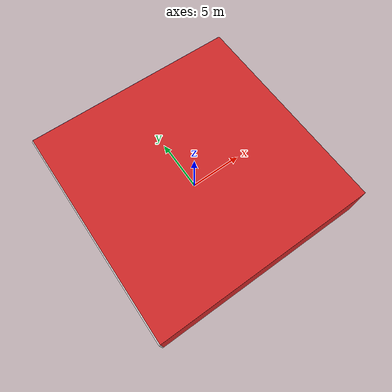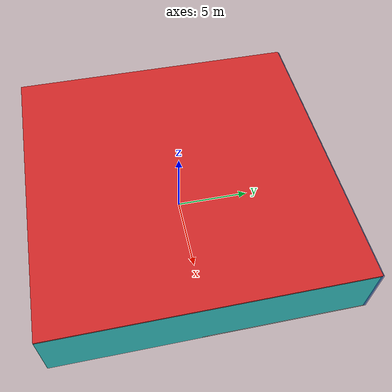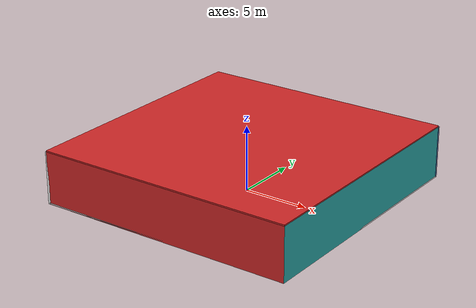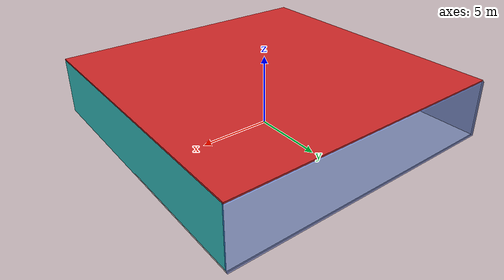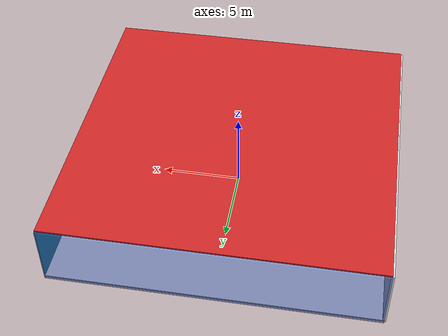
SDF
<sdf version="1.4">
 <world name="default">
  <physics type="ode">
   <max_step_size>0.001</max_step_size>
   <real_time_factor>1</real_time_factor>
   <real_time_update_rate>1000</real_time_update_rate>
   <gravity>0 0 -9.8</gravity>
  </physics>
  <scene><ambient>0.4 0.4 0.4 1</ambient><background>0.7 0.7 0.7 1</background><shadows>1</shadows></scene>
  <model name="Surrounding">
   <static>1</static>
   <link name="Ceiling">
    <collision name="Ceiling_Collision"><geometry><box><size>20 20 0.1</size></box></geometry></collision>
    <visual name="Ceiling_Visual">
     <geometry><box><size>20 20 0.1</size></box></geometry>
     <material>
      <script><uri>file://media/materials/scripts/gazebo.material</uri><name>Gazebo/Red</name></script>
     </material>
    </visual>
    <pose>0 0 4.05 0 0 0</pose>
   </link>
   <link name="Wall_South">
    <collision name="Wall_South_Collision">
     <geometry><box><size>20 0 4</size></box></geometry>
     <pose>0 0 2 0 -0 0</pose>
    </collision>
    <visual name="Wall_South_Visual">
     <pose>0 0 2 0 -0 0</pose>
     <geometry><box><size>20 0 4</size></box></geometry>
     <material>
      <script><uri>file://media/materials/scripts/gazebo.material</uri><name>Gazebo/RedGlow</name></script>
     </material>
    </visual>
    <velocity_decay><linear>0</linear><angular>0</angular></velocity_decay>
    <pose>0 -10 0 0 -0 0</pose>
   </link>
   <link name="Wall_East">
    <collision name="Wall_21_Collision">
     <geometry><box><size>20 0 4</size></box></geometry>
     <pose>0 0 2 0 -0 0</pose>
    </collision>
    <visual name="Wall_21_Visual">
     <pose>0 0 2 0 -0 0</pose>
     <geometry><box><size>20 0 4</size></box></geometry>
     <material>
      <script><uri>file://media/materials/scripts/gazebo.material</uri><name>Gazebo/TurquoiseGlow</name></script>
     </material>
    </visual>
    <velocity_decay><linear>0</linear><angular>0</angular></velocity_decay>
    <pose>10 0 0 0 -0 1.5708</pose>
   </link>
   <link name="Wall_North">
    <collision name="Wall_22_Collision">
     <geometry><box><size>20 0.2 4</size></box></geometry>
     <pose>0 0 2 0 -0 0</pose>
    </collision>
    <visual name="Wall_22_Visual">
     <pose>0 0 2 0 -0 0</pose>
     <geometry><box><size>20 0.2 4</size></box></geometry>
     <material>
      <script><uri>file://media/materials/scripts/gazebo.material</uri><name>Gazebo/BlueTransparent</name></script>
     </material>
    </visual>
    <velocity_decay><linear>0</linear><angular>0</angular></velocity_decay>
    <pose>0 10 0 0 -0 0</pose>
   </link>
   <link name="Wall_West">
    <collision name="Wall_23_Collision">
     <geometry><box><size>20 0.2 4</size></box></geometry>
     <pose>0 0 2 0 -0 0</pose>
    </collision>
    <visual name="Wall_23_Visual">
     <pose>0 0 2 0 -0 0</pose>
     <geometry><box><size>20 0.2 4</size></box></geometry>
     <material>
      <script><uri>file://media/materials/scripts/gazebo.material</uri><name>Gazebo/White</name></script>
     </material>
    </visual>
    <velocity_decay><linear>0</linear><angular>0</angular></velocity_decay>
    <pose>-10 0 0 0 0 -1.5708</pose>
   </link>
   <link name="Ground_link">
    <collision name="collision">
     <pose>0 0 .05 0 -0 0</pose>
     <geometry><box><size>20 20 0.1</size></box></geometry>
    </collision>
    <visual name="visual">
     <pose>0 0 .05 0 -0 0</pose>
     <geometry><box><size>20 20 0.1</size></box></geometry>
     <material>
      <script><uri>file://media/materials/scripts/gazebo.material</uri><name>Gazebo/WhiteGlow</name></script>
     </material>
    </visual>
   </link>
   <static>1</static>
  </model>
  <spherical_coordinates>
   <surface_model>EARTH_WGS84</surface_model>
   <latitude_deg>0</latitude_deg>
   <longitude_deg>0</longitude_deg>
   <elevation>0</elevation>
   <heading_deg>0</heading_deg>
  </spherical_coordinates>
  <light name="lightball_0" type="diffuse">
   <diffuse>0.8 0.8 0.8 1</diffuse>
   <specular>0.2 0.2 0.2 1</specular>
   <attenuation>
    <range>100</range>
    <constant>0.7</constant>
    <linear>0.01</linear>
    <quadratic>0.001</quadratic>
   </attenuation>
   <direction>-0.5 0.1 -0.9</direction>
   <pose>9.74167276646 0.518512394803 3.36133708372 0 0 0</pose>
  </light>
  <light name="lightball_1" type="diffuse">
   <diffuse>0.8 0.8 0.8 1</diffuse>
   <specular>0.2 0.2 0.2 1</specular>
   <attenuation>
    <range>100</range>
    <constant>0.7</constant>
    <linear>0.01</linear>
    <quadratic>0.001</quadratic>
   </attenuation>
   <direction>-0.5 0.1 -0.9</direction>
   <pose>2.27359298488 6.14004277179 2.41457224701 0 0 0</pose>
  </light>
  <light name="lightball_2" type="diffuse">
   <diffuse>0.8 0.8 0.8 1</diffuse>
   <specular>0.2 0.2 0.2 1</specular>
   <attenuation>
    <range>100</range>
    <constant>0.7</constant>
    <linear>0.01</linear>
    <quadratic>0.001</quadratic>
   </attenuation>
   <direction>-0.5 0.1 -0.9</direction>
   <pose>-5.50212277661 6.68425279367 1.31057485676 0 0 0</pose>
  </light>
  <light name="lightball_3" type="diffuse">
   <diffuse>0.8 0.8 0.8 1</diffuse>
   <specular>0.2 0.2 0.2 1</specular>
   <attenuation>
    <range>100</range>
    <constant>0.7</constant>
    <linear>0.01</linear>
    <quadratic>0.001</quadratic>
   </attenuation>
   <direction>-0.5 0.1 -0.9</direction>
   <pose>-6.68370723922 5.01269228283 0.625079792884 0 0 0</pose>
  </light>
  <light name="lightball_4" type="diffuse">
   <diffuse>0.8 0.8 0.8 1</diffuse>
   <specular>0.2 0.2 0.2 1</specular>
   <attenuation>
    <range>100</range>
    <constant>0.7</constant>
    <linear>0.01</linear>
    <quadratic>0.001</quadratic>
   </attenuation>
   <direction>-0.5 0.1 -0.9</direction>
   <pose>-4.16542784853 -8.66316230749 1.73762248121 0 0 0</pose>
  </light>
  <light name="lightball_5" type="diffuse">
   <diffuse>0.8 0.8 0.8 1</diffuse>
   <specular>0.2 0.2 0.2 1</specular>
   <attenuation>
    <range>100</range>
    <constant>0.7</constant>
    <linear>0.01</linear>
    <quadratic>0.001</quadratic>
   </attenuation>
   <direction>-0.5 0.1 -0.9</direction>
   <pose>-6.54907405465 2.6274309937 3.76959682458 0 0 0</pose>
  </light>
  <light name="lightball_6" type="diffuse">
   <diffuse>0.8 0.8 0.8 1</diffuse>
   <specular>0.2 0.2 0.2 1</specular>
   <attenuation>
    <range>100</range>
    <constant>0.7</constant>
    <linear>0.01</linear>
    <quadratic>0.001</quadratic>
   </attenuation>
   <direction>-0.5 0.1 -0.9</direction>
   <pose>-0.217727421062 -9.97287727778 1.84912437539 0 0 0</pose>
  </light>
  <light name="lightball_7" type="diffuse">
   <diffuse>0.8 0.8 0.8 1</diffuse>
   <specular>0.2 0.2 0.2 1</specular>
   <attenuation>
    <range>100</range>
    <constant>0.7</constant>
    <linear>0.01</linear>
    <quadratic>0.001</quadratic>
   </attenuation>
   <direction>-0.5 0.1 -0.9</direction>
   <pose>1.81052281227 -7.74589982084 1.31828715507 0 0 0</pose>
  </light>
  <light name="lightball_8" type="diffuse">
   <diffuse>0.8 0.8 0.8 1</diffuse>
   <specular>0.2 0.2 0.2 1</specular>
   <attenuation>
    <range>100</range>
    <constant>0.7</constant>
    <linear>0.01</linear>
    <quadratic>0.001</quadratic>
   </attenuation>
   <direction>-0.5 0.1 -0.9</direction>
   <pose>-2.97546214305 -3.93956398251 3.61998874023 0 0 0</pose>
  </light>
  <light name="lightball_9" type="diffuse">
   <diffuse>0.8 0.8 0.8 1</diffuse>
   <specular>0.2 0.2 0.2 1</specular>
   <attenuation>
    <range>100</range>
    <constant>0.7</constant>
    <linear>0.01</linear>
    <quadratic>0.001</quadratic>
   </attenuation>
   <direction>-0.5 0.1 -0.9</direction>
   <pose>-1.25577827281 -9.76806600287 0.684757911534 0 0 0</pose>
  </light>
  <light name="lightball_10" type="diffuse">
   <diffuse>0.8 0.8 0.8 1</diffuse>
   <specular>0.2 0.2 0.2 1</specular>
   <attenuation>
    <range>100</range>
    <constant>0.7</constant>
    <linear>0.01</linear>
    <quadratic>0.001</quadratic>
   </attenuation>
   <direction>-0.5 0.1 -0.9</direction>
   <pose>-0.741872693913 1.29745194556 2.93912356797 0 0 0</pose>
  </light>
  <light name="lightball_11" type="diffuse">
   <diffuse>0.8 0.8 0.8 1</diffuse>
   <specular>0.2 0.2 0.2 1</specular>
   <attenuation>
    <range>100</range>
    <constant>0.7</constant>
    <linear>0.01</linear>
    <quadratic>0.001</quadratic>
   </attenuation>
   <direction>-0.5 0.1 -0.9</direction>
   <pose>5.91762324261 2.2161304658 3.27002308764 0 0 0</pose>
  </light>
  <light name="lightball_12" type="diffuse">
   <diffuse>0.8 0.8 0.8 1</diffuse>
   <specular>0.2 0.2 0.2 1</specular>
   <attenuation>
    <range>100</range>
    <constant>0.7</constant>
    <linear>0.01</linear>
    <quadratic>0.001</quadratic>
   </attenuation>
   <direction>-0.5 0.1 -0.9</direction>
   <pose>-4.9115998655 2.47757613447 0.864518787775 0 0 0</pose>
  </light>
  <light name="lightball_13" type="diffuse">
   <diffuse>0.8 0.8 0.8 1</diffuse>
   <specular>0.2 0.2 0.2 1</specular>
   <attenuation>
    <range>100</range>
    <constant>0.7</constant>
    <linear>0.01</linear>
    <quadratic>0.001</quadratic>
   </attenuation>
   <direction>-0.5 0.1 -0.9</direction>
   <pose>9.38208481296 9.94088407238 0.719305785899 0 0 0</pose>
  </light>
  <include><uri>model://table</uri><pose>-7.46726803811 -4.38800534433 0 0 0 0.322147304058</pose></include>
  <include><uri>model://table</uri><pose>4.90462493148 -5.18835677267 0 0 0 1.23292163697</pose></include>
  <include>
   <uri>model://robocup_3Dsim_goal</uri>
   <pose>4.95949269734 1.19787838652 0 0 0 3.00193878547</pose>
  </include>
  <include><uri>model://cabinet</uri><pose>4.70175201314 3.9208466717 0 0 0 0.717817565099</pose></include>
 </world>
</sdf>

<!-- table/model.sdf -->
<sdf version="1.5">
  <model name="table">
    <static>true</static>
    <link name="link">
      <collision name="surface">
        <pose>0 0 1.0 0 0 0</pose>
        <geometry>
          <box>
            <size>1.5 0.8 0.03</size>
          </box>
        </geometry>
        <surface>
          <friction>
            <ode>
              <mu>0.6</mu>
              <mu2>0.6</mu2>
            </ode>
          </friction>
        </surface>
      </collision>
      <visual name="visual1">
        <pose>0 0 1.0 0 0 0</pose>
        <geometry>
          <box>
            <size>1.5 0.8 0.03</size>
          </box>
        </geometry>
        <material>
          <script>
            <uri>model://media/materials/scripts/gazebo.material</uri>
            <name>Gazebo/Wood</name>
          </script>
        </material>
      </visual>
      <collision name="front_left_leg">
        <pose>0.68 0.38 0.5 0 0 0</pose>
        <geometry>
          <cylinder>
            <radius>0.02</radius>
            <length>1.0</length>
          </cylinder>
        </geometry>
      </collision>
      <visual name="front_left_leg">
        <pose>0.68 0.38 0.5 0 0 0</pose>
        <geometry>
          <cylinder>
            <radius>0.02</radius>
            <length>1.0</length>
          </cylinder>
        </geometry>
        <material>
          <script>
            <uri>model://media/materials/scripts/gazebo.material</uri>
            <name>Gazebo/Grey</name>
          </script>
        </material>
      </visual>
      <collision name="front_right_leg">
        <pose>0.68 -0.38 0.5 0 0 0</pose>
        <geometry>
          <cylinder>
            <radius>0.02</radius>
            <length>1.0</length>
          </cylinder>
        </geometry>
      </collision>
      <visual name="front_right_leg">
        <pose>0.68 -0.38 0.5 0 0 0</pose>
        <geometry>
          <cylinder>
            <radius>0.02</radius>
            <length>1.0</length>
          </cylinder>
        </geometry>
        <material>
          <script>
            <uri>model://media/materials/scripts/gazebo.material</uri>
            <name>Gazebo/Grey</name>
          </script>
        </material>
      </visual>
      <collision name="back_right_leg">
        <pose>-0.68 -0.38 0.5 0 0 0</pose>
        <geometry>
          <cylinder>
            <radius>0.02</radius>
            <length>1.0</length>
          </cylinder>
        </geometry>
      </collision>
      <visual name="back_right_leg">
        <pose>-0.68 -0.38 0.5 0 0 0</pose>
        <geometry>
          <cylinder>
            <radius>0.02</radius>
            <length>1.0</length>
          </cylinder>
        </geometry>
        <material>
          <script>
            <uri>model://media/materials/scripts/gazebo.material</uri>
            <name>Gazebo/Grey</name>
          </script>
        </material>
      </visual>
      <collision name="back_left_leg">
        <pose>-0.68 0.38 0.5 0 0 0</pose>
        <geometry>
          <cylinder>
            <radius>0.02</radius>
            <length>1.0</length>
          </cylinder>
        </geometry>
      </collision>
      <visual name="back_left_leg">
        <pose>-0.68 0.38 0.5 0 0 0</pose>
        <geometry>
          <cylinder>
            <radius>0.02</radius>
            <length>1.0</length>
          </cylinder>
        </geometry>
        <material>
          <script>
            <uri>model://media/materials/scripts/gazebo.material</uri>
            <name>Gazebo/Grey</name>
          </script>
        </material>
      </visual>
    </link>
  </model>
</sdf>

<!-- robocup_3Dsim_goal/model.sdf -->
<sdf version="1.5">
  <model name="robocup_3d_goal">
    <static>true</static>
    <link name="left_post">
      <pose>0 1.05 0.45 0 0 0</pose>
      <collision name="collision">
        <geometry>
          <cylinder>
            <radius>0.05</radius>
            <length>0.9</length>
          </cylinder>
        </geometry>
      </collision>
      <visual name="visual">
        <geometry>
          <cylinder>
            <radius>0.05</radius>
            <length>0.9</length>
          </cylinder>
        </geometry>
        <material>
          <script>
            <uri>file://media/materials/scripts/gazebo.material</uri>
            <name>Gazebo/ZincYellow</name>
          </script>
        </material>
      </visual>
    </link>
    <link name="left_support_horiz_lower">
      <pose>0.30 1.05 0.01 0 0 0</pose>
      <collision name="collision">
        <geometry>
          <box>
            <size>0.50 0.02 0.02</size>
          </box>
        </geometry>
      </collision>
      <visual name="visual">
        <geometry>
          <box>
            <size>0.50 0.02 0.02</size>
          </box>
        </geometry>
        <material>
          <script>
            <uri>file://media/materials/scripts/gazebo.material</uri>
            <name>Gazebo/White</name>
          </script>
        </material>
      </visual>
    </link>
    <link name="left_support_horiz_upper">
      <pose>0.30 1.05 0.79 0 0 0</pose>
      <collision name="collision">
        <geometry>
          <box>
            <size>0.50 0.02 0.02</size>
          </box>
        </geometry>
      </collision>
      <visual name="visual">
        <geometry>
          <box>
            <size>0.50 0.02 0.02</size>
          </box>
        </geometry>
        <material>
          <script>
            <uri>file://media/materials/scripts/gazebo.material</uri>
            <name>Gazebo/White</name>
          </script>
        </material>
      </visual>
    </link>
    <link name="left_support_vertical">
      <pose>0.56 1.05 0.4 0 1.5708 0</pose>
      <collision name="collision">
        <geometry>
          <box>
            <size>0.80 0.02 0.02</size>
          </box>
        </geometry>
      </collision>
      <visual name="visual">
        <geometry>
          <box>
            <size>0.80 0.02 0.02</size>
          </box>
        </geometry>
        <material>
          <script>
            <uri>file://media/materials/scripts/gazebo.material</uri>
            <name>Gazebo/White</name>
          </script>
        </material>
      </visual>
    </link>
    <link name="right_support_horiz_lower">
      <pose>0.30 -1.05 0.01 0 0 0</pose>
      <collision name="collision">
        <geometry>
          <box>
            <size>0.50 0.02 0.02</size>
          </box>
        </geometry>
      </collision>
      <visual name="visual">
        <geometry>
          <box>
            <size>0.50 0.02 0.02</size>
          </box>
        </geometry>
        <material>
          <script>
            <uri>file://media/materials/scripts/gazebo.material</uri>
            <name>Gazebo/White</name>
          </script>
        </material>
      </visual>
    </link>
    <link name="right_support_horiz_upper">
      <pose>0.30 -1.05 0.79 0 0 0</pose>
      <collision name="collision">
        <geometry>
          <box>
            <size>0.50 0.02 0.02</size>
          </box>
        </geometry>
      </collision>
      <visual name="visual">
        <geometry>
          <box>
            <size>0.50 0.02 0.02</size>
          </box>
        </geometry>
        <material>
          <script>
            <uri>file://media/materials/scripts/gazebo.material</uri>
            <name>Gazebo/White</name>
          </script>
        </material>
      </visual>
    </link>
    <link name="right_support_vertical">
      <pose>0.56 -1.05 0.4 0 1.5708 0</pose>
      <collision name="collision">
        <geometry>
          <box>
            <size>0.80 0.02 0.02</size>
          </box>
        </geometry>
      </collision>
      <visual name="visual">
        <geometry>
          <box>
            <size>0.80 0.02 0.02</size>
          </box>
        </geometry>
        <material>
          <script>
            <uri>file://media/materials/scripts/gazebo.material</uri>
            <name>Gazebo/White</name>
          </script>
        </material>
      </visual>
    </link>
    <link name="center_support_horiz_lower">
      <pose>0.56 0 0.01 0 1.5708 0</pose>
      <collision name="collision">
        <geometry>
          <box>
            <size>0.02 2.08 0.02</size>
          </box>
        </geometry>
      </collision>
      <visual name="visual">
        <geometry>
          <box>
            <size>0.02 2.08 0.02</size>
          </box>
        </geometry>
        <material>
          <script>
            <uri>file://media/materials/scripts/gazebo.material</uri>
            <name>Gazebo/White</name>
          </script>
        </material>
      </visual>
    </link>
    <link name="center_support_horiz_upper">
      <pose>0.56 0 0.79 0 1.5708 0</pose>
      <collision name="collision">
        <geometry>
          <box>
            <size>0.02 2.08 0.02</size>
          </box>
        </geometry>
      </collision>
      <visual name="visual">
        <geometry>
          <box>
            <size>0.02 2.08 0.02</size>
          </box>
        </geometry>
        <material>
          <script>
            <uri>file://media/materials/scripts/gazebo.material</uri>
            <name>Gazebo/White</name>
          </script>
        </material>
      </visual>
    </link>
    <link name="right_post">
      <pose>0 -1.05 0.45 0 0 0</pose>
      <collision name="collision">
        <geometry>
          <cylinder>
            <radius>0.05</radius>
            <length>0.9</length>
          </cylinder>
        </geometry>
      </collision>
      <visual name="visual">
        <geometry>
          <cylinder>
            <radius>0.05</radius>
            <length>0.9</length>
          </cylinder>
        </geometry>
        <material>
          <script>
            <uri>file://media/materials/scripts/gazebo.material</uri>
            <name>Gazebo/ZincYellow</name>
          </script>
        </material>
      </visual>
    </link>
    <link name="crossbar">
      <pose>0 0 0.85 1.57 1.57 0</pose>
      <collision name="collision">
        <geometry>
          <cylinder>
            <radius>0.05</radius>
            <length>2.0</length>
          </cylinder>
        </geometry>
      </collision>
      <visual name="visual">
        <geometry>
          <cylinder>
            <radius>0.05</radius>
            <length>2.0</length>
          </cylinder>
        </geometry>
        <material>
          <script>
            <uri>file://media/materials/scripts/gazebo.material</uri>
            <name>Gazebo/ZincYellow</name>
          </script>
        </material>
      </visual>
    </link>
    <link name="center_net">
      <pose>0.56 0 0.40 0 0 0</pose>
      <collision name="collision">
        <geometry>
          <box>
            <size>0.01 2.1 0.80</size>
          </box>
        </geometry>
      </collision>
      <visual name="visual">
        <geometry>
          <box>
            <size>0.01 2.1 0.80</size>
          </box>
        </geometry>
        <material>
          <script>
            <uri>model://../model_source/models/robocup09_spl_field/materials/scripts/</uri>
            <uri>model://../model_source/models/robocup09_spl_field/materials/textures/</uri>
            <name>RoboCup/Net</name>
          </script>
        </material>
      </visual>
    </link>
    <link name="left_net">
      <pose>0.30 1.05 0.40 0 0 0</pose>
      <collision name="collision">
        <geometry>
          <box>
            <size>0.50 0.01 0.76</size>
          </box>
        </geometry>
      </collision>
      <visual name="visual">
        <geometry>
          <box>
            <size>0.50 0.01 0.76</size>
          </box>
        </geometry>
        <material>
          <script>
            <uri>model://../model_source/models/robocup09_spl_field/materials/scripts/</uri>
            <uri>model://../model_source/models/robocup09_spl_field/materials/textures/</uri>
            <name>RoboCup/Net</name>
          </script>
        </material>
      </visual>
    </link>
    <link name="right_net">
      <pose>0.30 -1.05 0.40 0 0 0</pose>
      <collision name="collision">
        <geometry>
          <box>
            <size>0.50 0.01 0.76</size>
          </box>
        </geometry>
      </collision>
      <visual name="visual">
        <geometry>
          <box>
            <size>0.50 0.01 0.76</size>
          </box>
        </geometry>
        <material>
          <script>
            <uri>model://../model_source/models/robocup09_spl_field/materials/scripts/</uri>
            <uri>model://../model_source/models/robocup09_spl_field/materials/textures/</uri>
            <name>RoboCup/Net</name>
          </script>
        </material>
      </visual>
    </link>
  </model>
</sdf>

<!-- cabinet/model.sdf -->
<sdf version="1.5">
  <model name="cabinet">
    <static>true</static>
    <link name="cabinet_bottom_plate">
      <inertial>
        <pose>0 0 -1 0 0 0</pose>
        <inertia>
          <ixx>2.050000</ixx>
          <ixy>0</ixy>
          <ixz>0</ixz>
          <iyy>2.050000</iyy>
          <iyz>0</iyz>
          <izz>2.050000</izz>
        </inertia>
        <mass>25.000000</mass>
      </inertial>
      <collision name="cabinet_bottom_plate_geom">
        <pose>0 0 0.010000 0 0 0</pose>
        <geometry>
          <box>
            <size>0.450000 0.450000 0.020000</size>
          </box>
        </geometry>
      </collision>
      <visual name="cabinet_bottom_plate_geom_visual">
        <pose>0 0 0.010000 0 0 0</pose>
        <geometry>
          <box>
            <size>0.450000 0.450000 0.020000</size>
          </box>
        </geometry>
        <material>
          <script>
            <uri>model://media/materials/scripts/gazebo.material</uri>
            <name>Gazebo/Wood</name>
          </script>
        </material>
      </visual>
      <collision name="cabinet_bottom_plate_geom_cabinet_back_plate">
        <pose>0.235000 0 0.510000 0 0 0</pose>
        <geometry>
          <box>
            <size>0.020000 0.450000 1.020000</size>
          </box>
        </geometry>
      </collision>
      <visual name="cabinet_bottom_plate_geom_cabinet_back_plate_visual">
        <pose>0.235000 0 0.510000 0 0 0</pose>
        <geometry>
          <box>
            <size>0.020000 0.450000 1.020000</size>
          </box>
        </geometry>
        <material>
          <script>
            <uri>model://media/materials/scripts/gazebo.material</uri>
            <name>Gazebo/Wood</name>
          </script>
        </material>
      </visual>
      <collision name="cabinet_bottom_plate_geom_cabinet_left_plate">
        <pose>0 0.235000 0.510000 0 0 0</pose>
        <geometry>
          <box>
            <size>0.450000 0.020000 1.020000</size>
          </box>
        </geometry>
      </collision>
      <visual name="cabinet_bottom_plate_geom_cabinet_left_plate_visual">
        <pose>0 0.235000 0.510000 0 0 0</pose>
        <geometry>
          <box>
            <size>0.450000 0.020000 1.020000</size>
          </box>
        </geometry>
        <material>
          <script>
            <uri>model://media/materials/scripts/gazebo.material</uri>
            <name>Gazebo/Wood</name>
          </script>
        </material>
      </visual>
      <collision name="cabinet_bottom_plate_geom_cabinet_middle_plate">
        <pose>0 0 0.510000 0 0 0</pose>
        <geometry>
          <box>
            <size>0.450000 0.450000 0.020000</size>
          </box>
        </geometry>
      </collision>
      <visual name="cabinet_bottom_plate_geom_cabinet_middle_plate_visual">
        <pose>0 0 0.510000 0 0 0</pose>
        <geometry>
          <box>
            <size>0.450000 0.450000 0.020000</size>
          </box>
        </geometry>
        <material>
          <script>
            <uri>model://media/materials/scripts/gazebo.material</uri>
            <name>Gazebo/Wood</name>
          </script>
        </material>
      </visual>
      <collision name="cabinet_bottom_plate_geom_cabinet_right_plate">
        <pose>0 -0.235000 0.510000 0 0 0</pose>
        <geometry>
          <box>
            <size>0.450000 0.020000 1.020000</size>
          </box>
        </geometry>
      </collision>
      <visual name="cabinet_bottom_plate_geom_cabinet_right_plate_visual">
        <pose>0 -0.235000 0.510000 0 0 0</pose>
        <geometry>
          <box>
            <size>0.450000 0.020000 1.020000</size>
          </box>
        </geometry>
        <material>
          <script>
            <uri>model://media/materials/scripts/gazebo.material</uri>
            <name>Gazebo/Wood</name>
          </script>
        </material>
      </visual>
      <collision name="cabinet_bottom_plate_geom_cabinet_top_plate">
        <pose>0 0 1.010000 0 0 0</pose>
        <geometry>
          <box>
            <size>0.450000 0.450000 0.020000</size>
          </box>
        </geometry>
      </collision>
      <visual name="cabinet_bottom_plate_geom_cabinet_top_plate_visual">
        <pose>0 0 1.010000 0 0 0</pose>
        <geometry>
          <box>
            <size>0.450000 0.450000 0.020000</size>
          </box>
        </geometry>
        <material>
          <script>
            <uri>model://media/materials/scripts/gazebo.material</uri>
            <name>Gazebo/Wood</name>
          </script>
        </material>
      </visual>
    </link>
  </model>
</sdf>
